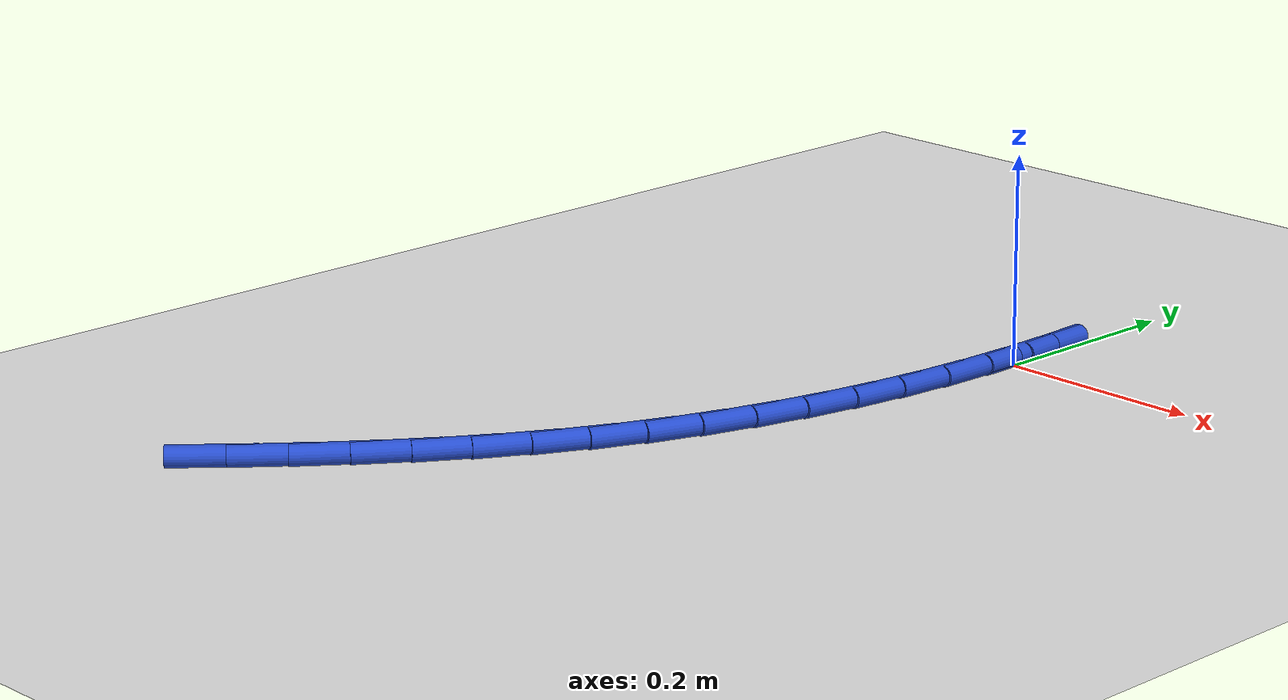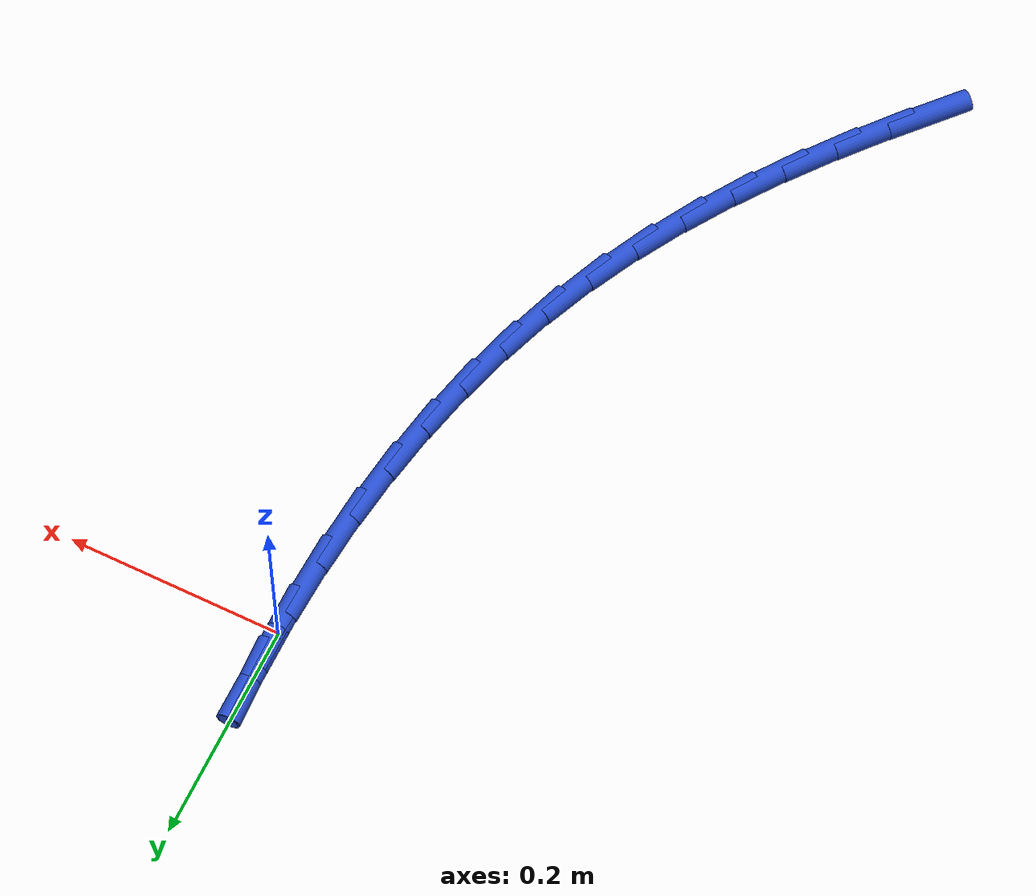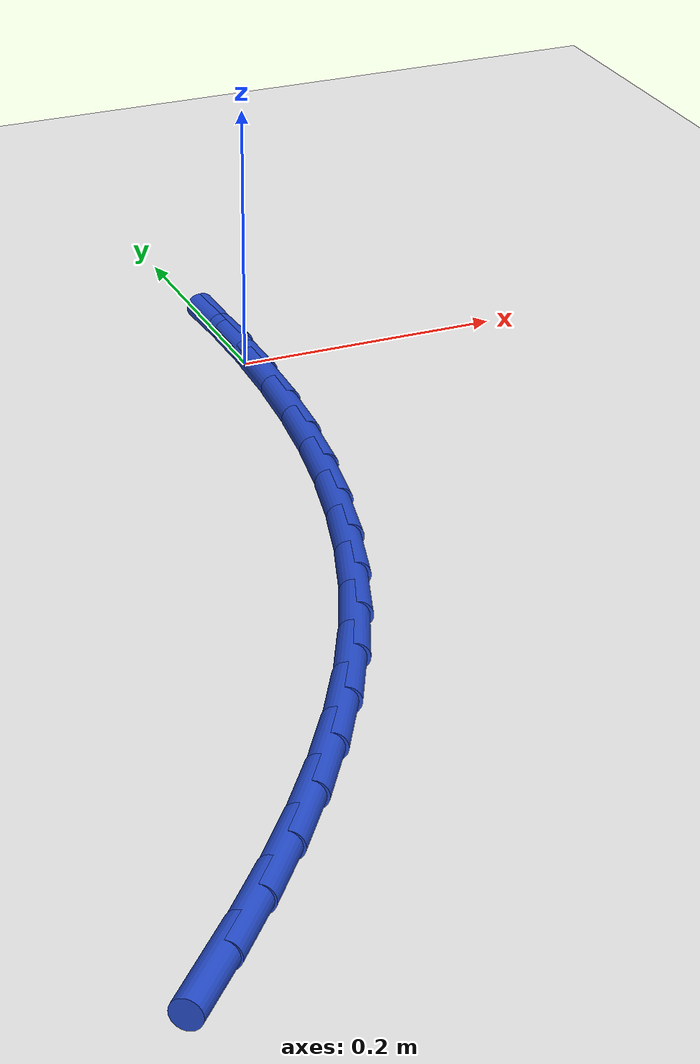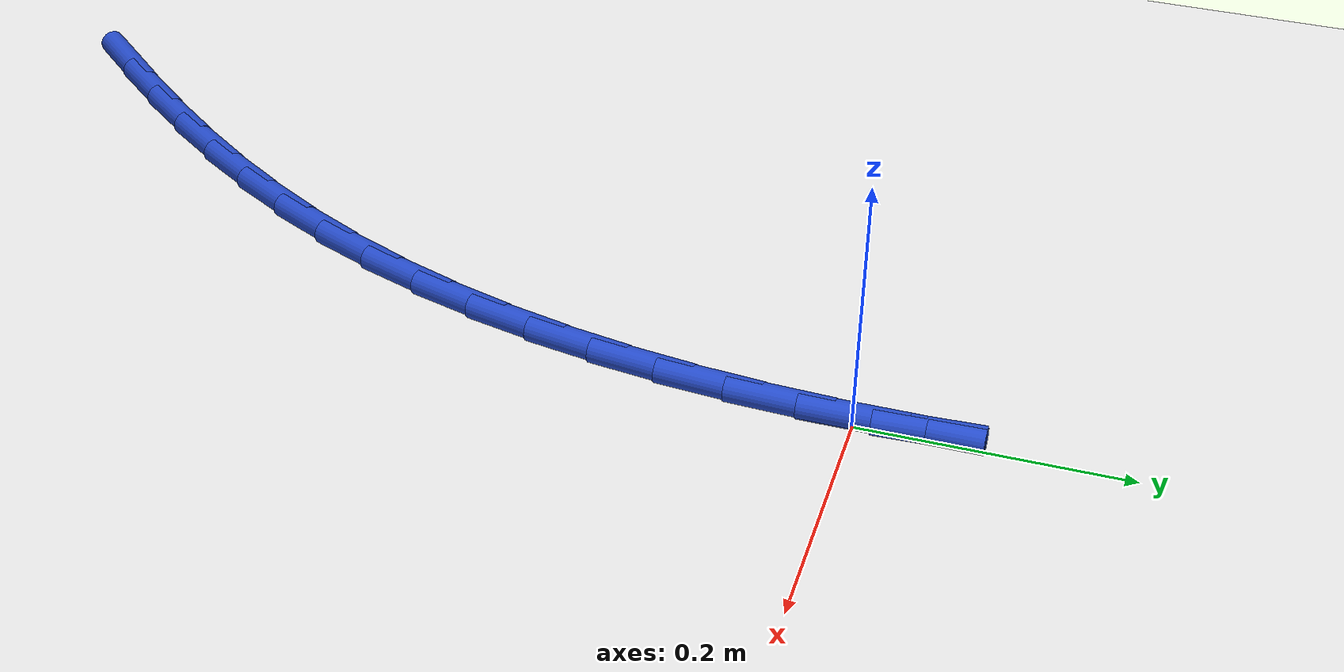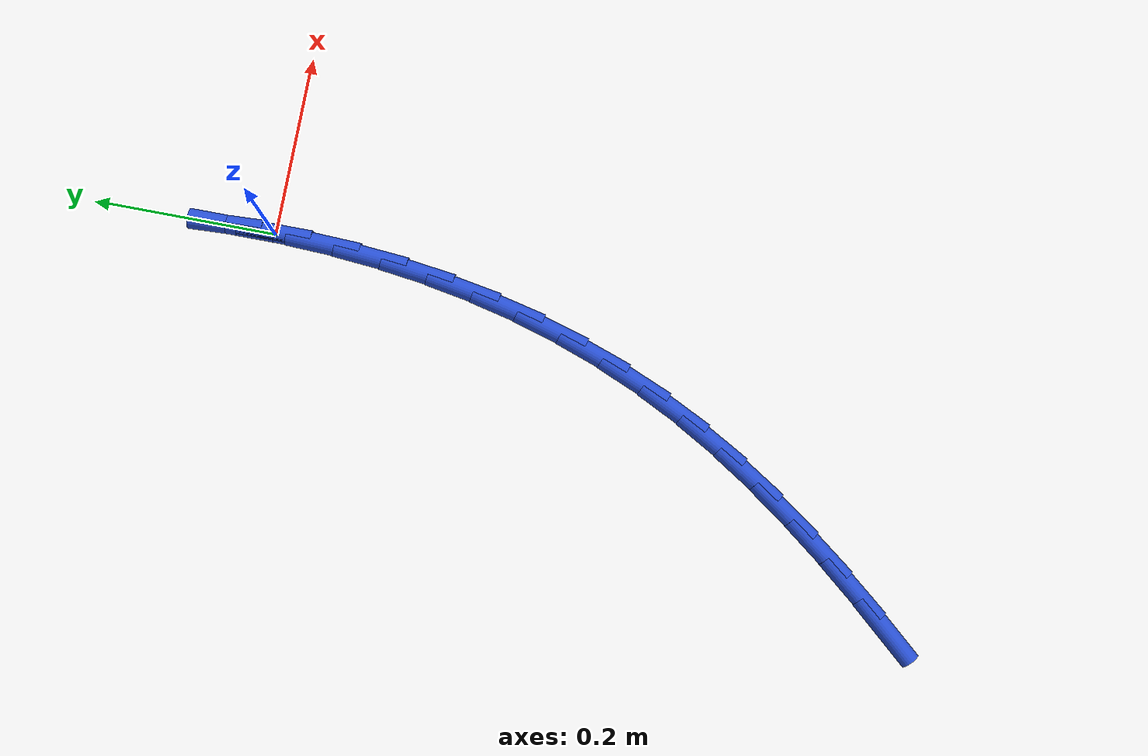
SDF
<sdf version="1.6">
 <world name="default">
  <model name="ground_plane">
   <static>1</static>
   <link name="link">
    <collision name="collision">
     <geometry><plane><normal>0 0 1</normal><size>100 100</size></plane></geometry>
     <surface><friction><ode><mu>100</mu><mu2>50</mu2></ode></friction></surface>
    </collision>
    <visual name="visual">
     <cast_shadows>0</cast_shadows>
     <geometry><plane><normal>0 0 1</normal><size>100 100</size></plane></geometry>
     <material>
      <script><uri>file://media/materials/scripts/gazebo.material</uri><name>Gazebo/WhiteGlow</name></script>
     </material>
    </visual>
   </link>
  </model>
  <model name="line">
   <link name="link_0">
    <pose>6.071532165918825e-18 4.163336342344337e-17 0.01 0 1.57 -1.570722538413021</pose>
    <collision name="collision">
     <geometry><cylinder><radius>0.01</radius><length>0.08</length></cylinder></geometry>
    </collision>
    <visual name="visual">
     <material>
      <script><name>Gazebo/Blue</name><uri>file://media/materials/scripts/gazebo.material</uri></script>
     </material>
     <geometry><cylinder><radius>0.01</radius><length>0.08</length></cylinder></geometry>
    </visual>
   </link>
   <link name="link_1">
    <pose>-3.95585154420227e-06 0.053610764140245896 0.01 0 1.57 -1.5251461251662592</pose>
    <collision name="collision">
     <geometry><cylinder><radius>0.01</radius><length>0.08</length></cylinder></geometry>
    </collision>
    <visual name="visual">
     <material>
      <script><name>Gazebo/Blue</name><uri>file://media/materials/scripts/gazebo.material</uri></script>
     </material>
     <geometry><cylinder><radius>0.01</radius><length>0.08</length></cylinder></geometry>
    </visual>
   </link>
   <link name="link_135">
    <pose>-0.29138297829952436 -0.7011115729843632 0.01 0 1.57 0.8444728782737069</pose>
    <collision name="collision">
     <geometry><cylinder><radius>0.01</radius><length>0.08</length></cylinder></geometry>
    </collision>
    <visual name="visual">
     <material>
      <script><name>Gazebo/Blue</name><uri>file://media/materials/scripts/gazebo.material</uri></script>
     </material>
     <geometry><cylinder><radius>0.01</radius><length>0.08</length></cylinder></geometry>
    </visual>
   </link>
   <link name="link_136">
    <pose>-0.25642682301677006 -0.6617606337522414 0.01 0 1.57 0.8760316235728708</pose>
    <collision name="collision">
     <geometry><cylinder><radius>0.01</radius><length>0.08</length></cylinder></geometry>
    </collision>
    <visual name="visual">
     <material>
      <script><name>Gazebo/Blue</name><uri>file://media/materials/scripts/gazebo.material</uri></script>
     </material>
     <geometry><cylinder><radius>0.01</radius><length>0.08</length></cylinder></geometry>
    </visual>
   </link>
   <link name="link_137">
    <pose>-0.22291250626502765 -0.6215456146498423 0.01 0 1.57 0.9125641850444719</pose>
    <collision name="collision">
     <geometry><cylinder><radius>0.01</radius><length>0.08</length></cylinder></geometry>
    </collision>
    <visual name="visual">
     <material>
      <script><name>Gazebo/Blue</name><uri>file://media/materials/scripts/gazebo.material</uri></script>
     </material>
     <geometry><cylinder><radius>0.01</radius><length>0.08</length></cylinder></geometry>
    </visual>
   </link>
   <link name="link_138">
    <pose>-0.19108343289966417 -0.5803842829404523 0.01 0 1.57 0.9542480237364909</pose>
    <collision name="collision">
     <geometry><cylinder><radius>0.01</radius><length>0.08</length></cylinder></geometry>
    </collision>
    <visual name="visual">
     <material>
      <script><name>Gazebo/Blue</name><uri>file://media/materials/scripts/gazebo.material</uri></script>
     </material>
     <geometry><cylinder><radius>0.01</radius><length>0.08</length></cylinder></geometry>
    </visual>
   </link>
   <link name="link_139">
    <pose>-0.1611830077760451 -0.538194405887355 0.01 0 1.57 1.0012218158996664</pose>
    <collision name="collision">
     <geometry><cylinder><radius>0.01</radius><length>0.08</length></cylinder></geometry>
    </collision>
    <visual name="visual">
     <material>
      <script><name>Gazebo/Blue</name><uri>file://media/materials/scripts/gazebo.material</uri></script>
     </material>
     <geometry><cylinder><radius>0.01</radius><length>0.08</length></cylinder></geometry>
    </visual>
   </link>
   <link name="link_140">
    <pose>-0.13345463574953795 -0.4948937507538369 0.01 0 1.57 1.0535505043684548</pose>
    <collision name="collision">
     <geometry><cylinder><radius>0.01</radius><length>0.08</length></cylinder></geometry>
    </collision>
    <visual name="visual">
     <material>
      <script><name>Gazebo/Blue</name><uri>file://media/materials/scripts/gazebo.material</uri></script>
     </material>
     <geometry><cylinder><radius>0.01</radius><length>0.08</length></cylinder></geometry>
    </visual>
   </link>
   <link name="link_141">
    <pose>-0.10814172167550833 -0.45040008480318205 0.01 0 1.57 1.1111839516670383</pose>
    <collision name="collision">
     <geometry><cylinder><radius>0.01</radius><length>0.08</length></cylinder></geometry>
    </collision>
    <visual name="visual">
     <material>
      <script><name>Gazebo/Blue</name><uri>file://media/materials/scripts/gazebo.material</uri></script>
     </material>
     <geometry><cylinder><radius>0.01</radius><length>0.08</length></cylinder></geometry>
    </visual>
   </link>
   <link name="link_142">
    <pose>-0.08548766517461302 -0.40463117840130514 0.01 0 1.57 1.172470825906809</pose>
    <collision name="collision">
     <geometry><cylinder><radius>0.01</radius><length>0.08</length></cylinder></geometry>
    </collision>
    <visual name="visual">
     <material>
      <script><name>Gazebo/Blue</name><uri>file://media/materials/scripts/gazebo.material</uri></script>
     </material>
     <geometry><cylinder><radius>0.01</radius><length>0.08</length></cylinder></geometry>
    </visual>
   </link>
   <link name="link_143">
    <pose>-0.06567186850012512 -0.35754273335086795 0.01 0 1.57 1.2321008702280785</pose>
    <collision name="collision">
     <geometry><cylinder><radius>0.01</radius><length>0.08</length></cylinder></geometry>
    </collision>
    <visual name="visual">
     <material>
      <script><name>Gazebo/Blue</name><uri>file://media/materials/scripts/gazebo.material</uri></script>
     </material>
     <geometry><cylinder><radius>0.01</radius><length>0.08</length></cylinder></geometry>
    </visual>
   </link>
   <link name="link_144">
    <pose>-0.04865025466662437 -0.30922290828757226 0.01 0 1.57 1.28883084215278</pose>
    <collision name="collision">
     <geometry><cylinder><radius>0.01</radius><length>0.08</length></cylinder></geometry>
    </collision>
    <visual name="visual">
     <material>
      <script><name>Gazebo/Blue</name><uri>file://media/materials/scripts/gazebo.material</uri></script>
     </material>
     <geometry><cylinder><radius>0.01</radius><length>0.08</length></cylinder></geometry>
    </visual>
   </link>
   <link name="link_145">
    <pose>-0.034329994900426375 -0.2597887571821736 0.01 0 1.57 1.3426101653395597</pose>
    <collision name="collision">
     <geometry><cylinder><radius>0.01</radius><length>0.08</length></cylinder></geometry>
    </collision>
    <visual name="visual">
     <material>
      <script><name>Gazebo/Blue</name><uri>file://media/materials/scripts/gazebo.material</uri></script>
     </material>
     <geometry><cylinder><radius>0.01</radius><length>0.08</length></cylinder></geometry>
    </visual>
   </link>
   <link name="link_146">
    <pose>-0.022618260427845694 -0.2093573340054239 0.01 0 1.57 1.3934596617905517</pose>
    <collision name="collision">
     <geometry><cylinder><radius>0.01</radius><length>0.08</length></cylinder></geometry>
    </collision>
    <visual name="visual">
     <material>
      <script><name>Gazebo/Blue</name><uri>file://media/materials/scripts/gazebo.material</uri></script>
     </material>
     <geometry><cylinder><radius>0.01</radius><length>0.08</length></cylinder></geometry>
    </visual>
   </link>
   <link name="link_147">
    <pose>-0.01342222247519766 -0.1580456927280777 0.01 0 1.57 1.4414562583939863</pose>
    <collision name="collision">
     <geometry><cylinder><radius>0.01</radius><length>0.08</length></cylinder></geometry>
    </collision>
    <visual name="visual">
     <material>
      <script><name>Gazebo/Blue</name><uri>file://media/materials/scripts/gazebo.material</uri></script>
     </material>
     <geometry><cylinder><radius>0.01</radius><length>0.08</length></cylinder></geometry>
    </visual>
   </link>
   <link name="link_148">
    <pose>-0.006649052268797417 -0.1059708873208897 0.01 0 1.57 1.4867185628487154</pose>
    <collision name="collision">
     <geometry><cylinder><radius>0.01</radius><length>0.08</length></cylinder></geometry>
    </collision>
    <visual name="visual">
     <material>
      <script><name>Gazebo/Blue</name><uri>file://media/materials/scripts/gazebo.material</uri></script>
     </material>
     <geometry><cylinder><radius>0.01</radius><length>0.08</length></cylinder></geometry>
    </visual>
   </link>
   <link name="link_149">
    <pose>-0.0022059210349597916 -0.053249971754611894 0.01 0 1.57 1.529394230159015</pose>
    <collision name="collision">
     <geometry><cylinder><radius>0.01</radius><length>0.08</length></cylinder></geometry>
    </collision>
    <visual name="visual">
     <material>
      <script><name>Gazebo/Blue</name><uri>file://media/materials/scripts/gazebo.material</uri></script>
     </material>
     <geometry><cylinder><radius>0.01</radius><length>0.08</length></cylinder></geometry>
    </visual>
   </link>
   <link name="link_150">
    <pose>1.9949319973733282e-17 2.7755575615628914e-16 0.01 0 1.57 1.5696495262165036</pose>
    <collision name="collision">
     <geometry><cylinder><radius>0.01</radius><length>0.08</length></cylinder></geometry>
    </collision>
    <visual name="visual">
     <material>
      <script><name>Gazebo/Blue</name><uri>file://media/materials/scripts/gazebo.material</uri></script>
     </material>
     <geometry><cylinder><radius>0.01</radius><length>0.08</length></cylinder></geometry>
    </visual>
   </link>
   <link name="link_151">
    <pose>6.153960976702441e-05 0.053661973972195694 0.01 0 1.57 1.5696495262165033</pose>
    <collision name="collision">
     <geometry><cylinder><radius>0.01</radius><length>0.08</length></cylinder></geometry>
    </collision>
    <visual name="visual">
     <material>
      <script><name>Gazebo/Blue</name><uri>file://media/materials/scripts/gazebo.material</uri></script>
     </material>
     <geometry><cylinder><radius>0.01</radius><length>0.08</length></cylinder></geometry>
    </visual>
   </link>
  </model>
 </world>
</sdf>
